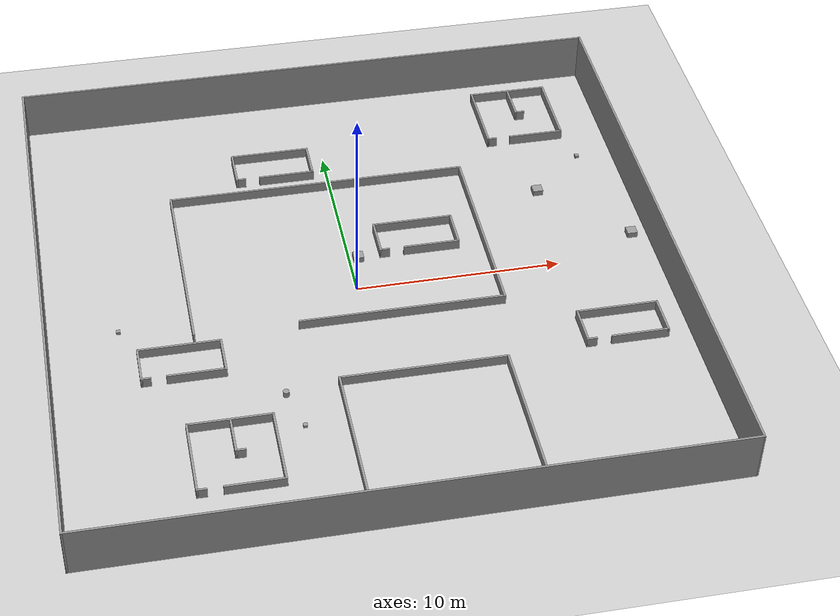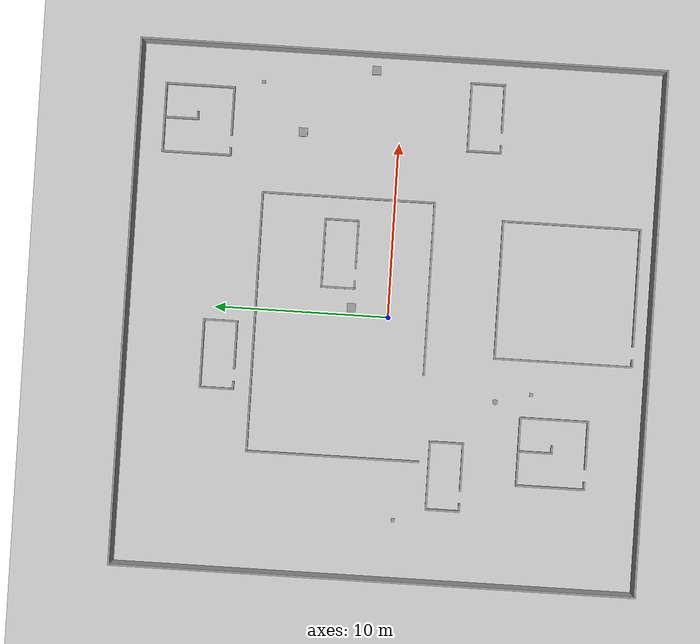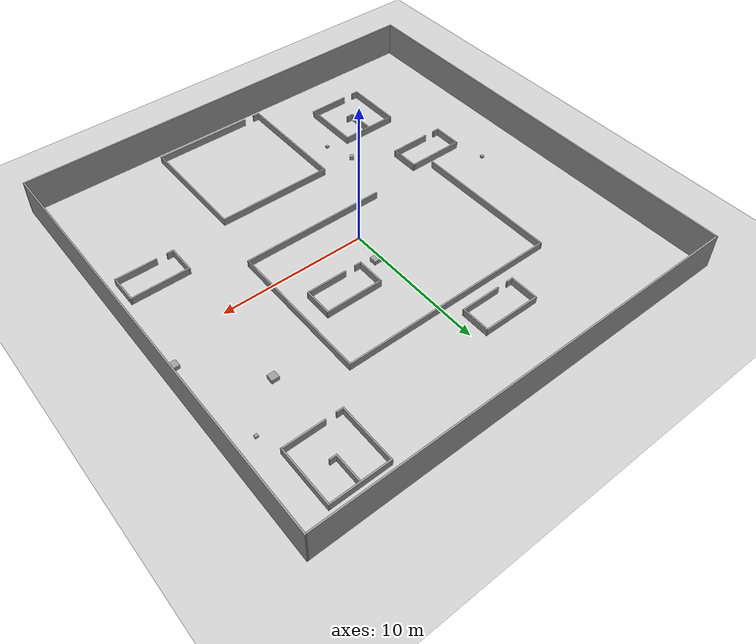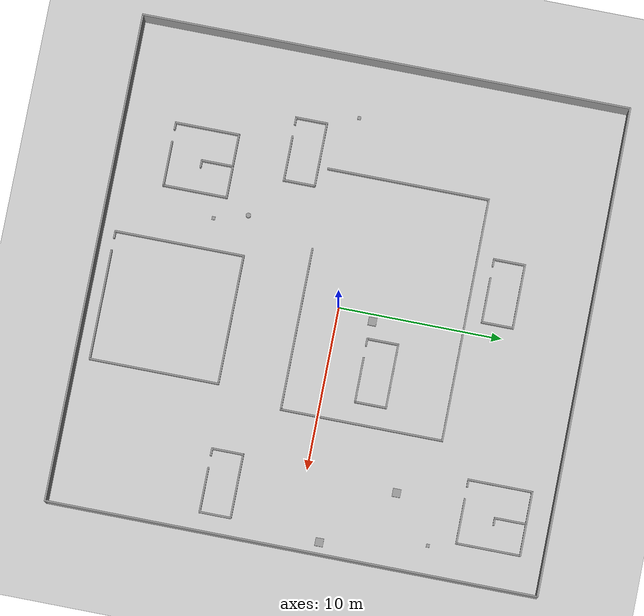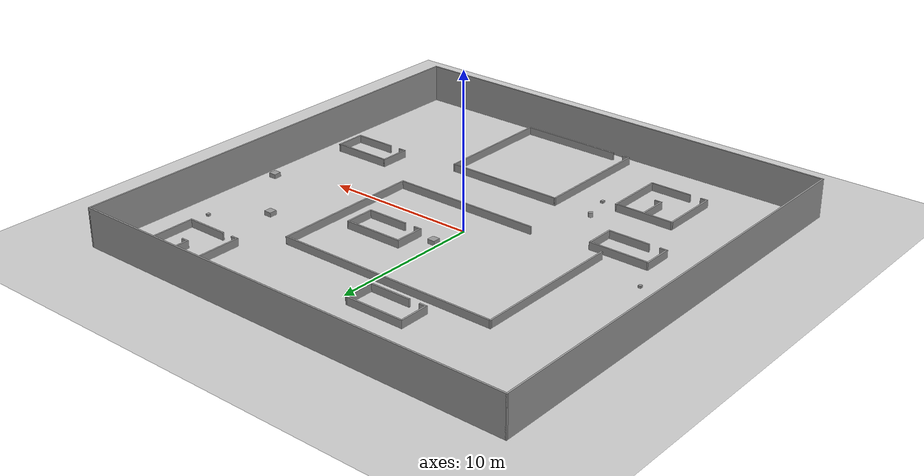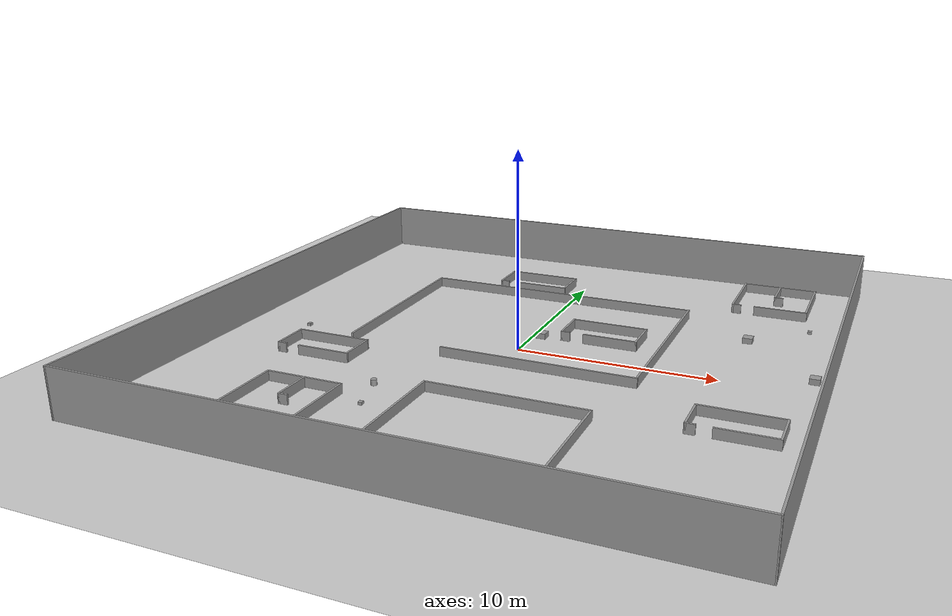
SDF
<sdf version="1.6">
  <world name="default">
    <light name="sun" type="directional">
      <cast_shadows>1</cast_shadows>
      <pose frame="">0 0 10 0 -0 0</pose>
      <diffuse>0.8 0.8 0.8 1</diffuse>
      <specular>0.2 0.2 0.2 1</specular>
      <attenuation>
        <range>1000</range>
        <constant>0.9</constant>
        <linear>0.01</linear>
        <quadratic>0.001</quadratic>
      </attenuation>
      <direction>-0.5 0.1 -0.9</direction>
    </light>
    <model name="ground_plane">
      <static>1</static>
      <link name="link">
        <collision name="collision">
          <geometry>
            <plane>
              <normal>0 0 1</normal>
              <size>30 30</size>
            </plane>
          </geometry>
          <surface>
            <contact>
              <collide_bitmask>65535</collide_bitmask>
              <ode />
            </contact>
            <friction>
              <ode>
                <mu>100</mu>
                <mu2>50</mu2>
              </ode>
              <torsional>
                <ode />
              </torsional>
            </friction>
            <bounce />
          </surface>
          <max_contacts>15</max_contacts>
        </collision>
        <visual name="visual">
          <cast_shadows>0</cast_shadows>
          <geometry>
            <plane>
              <normal>0 0 1</normal>
              <size>30 30</size>
            </plane>
          </geometry>
          <material>
            <script>
              <uri>file://media/materials/scripts/gazebo.material</uri>
              <name>Gazebo/Grey</name>
            </script>
          </material>
        </visual>
        <self_collide>0</self_collide>
        <enable_wind>0</enable_wind>
        <kinematic>0</kinematic>
      </link>
    </model>
     <model name="outsidewall.sdf">
    <pose frame="">0 0 0 0 -0 0</pose>
    <link name="Wall_3">
      <collision name="Wall_3_Collision">
        <geometry>
          <box>
            <size>30 0.10 2.5</size>
          </box>
        </geometry>
        <pose frame="">0 0 1.25 0 -0 0</pose>
      </collision>
      <visual name="Wall_3_Visual">
        <pose frame="">0 0 1.25 0 -0 0</pose>
        <geometry>
          <box>
            <size>30 0.10 2.5</size>
          </box>
        </geometry>
        <material>
          <script>
            <uri>file://media/materials/scripts/gazebo.material</uri>
            <name>Gazebo/Grey</name>
          </script>
          <ambient>1 1 1 1</ambient>
        </material>
        <meta>
          <layer>0</layer>
        </meta>
      </visual>
      <pose frame="">0 14.95 0 0 -0 0</pose>
    </link>
    <link name="Wall_5">
      <collision name="Wall_5_Collision">
        <geometry>
          <box>
            <size>30 0.10 2.5</size>
          </box>
        </geometry>
        <pose frame="">0 0 1.25 0 -0 0</pose>
      </collision>
      <visual name="Wall_5_Visual">
        <pose frame="">0 0 1.25 0 -0 0</pose>
        <geometry>
          <box>
            <size>30 0.10 2.5</size>
          </box>
        </geometry>
        <material>
          <script>
            <uri>file://media/materials/scripts/gazebo.material</uri>
            <name>Gazebo/Grey</name>
          </script>
          <ambient>1 1 1 1</ambient>
        </material>
        <meta>
          <layer>0</layer>
        </meta>
      </visual>
      <pose frame="">-14.95 0 0 0 -0 1.5707</pose>
    </link>
    <link name="Wall_6">
      <collision name="Wall_6_Collision">
        <geometry>
          <box>
            <size>30 0.10 2.5</size>
          </box>
        </geometry>
        <pose frame="">0 0 1.25 0 -0 0</pose>
      </collision>
      <visual name="Wall_6_Visual">
        <pose frame="">0 0 1.25 0 -0 0</pose>
        <geometry>
          <box>
            <size>30 0.10 2.5</size>
          </box>
        </geometry>
        <material>
          <script>
            <uri>file://media/materials/scripts/gazebo.material</uri>
            <name>Gazebo/Grey</name>
          </script>
          <ambient>1 1 1 1</ambient>
        </material>
        <meta>
          <layer>0</layer>
        </meta>
      </visual>
      <pose frame="">0 -14.95 0 0 -0 0</pose>
    </link>
    <link name="Wall_7">
      <collision name="Wall_7_Collision">
        <geometry>
          <box>
            <size>30 0.10 2.5</size>
          </box>
        </geometry>
        <pose frame="">0 0 1.25 0 -0 0</pose>
      </collision>
      <visual name="Wall_7_Visual">
        <pose frame="">0 0 1.25 0 -0 0</pose>
        <geometry>
          <box>
            <size>30 0.10 2.5</size>
          </box>
        </geometry>
        <material>
          <script>
            <uri>file://media/materials/scripts/gazebo.material</uri>
            <name>Gazebo/Grey</name>
          </script>
          <ambient>1 1 1 1</ambient>
        </material>
        <meta>
          <layer>0</layer>
        </meta>
      </visual>
      <pose frame="">14.95 0 0 0 -0 1.5707</pose>
    </link>
    <static>1</static>
  </model>
    <gravity>0 0 -9.8</gravity>
    <magnetic_field>6e-06 2.3e-05 -4.2e-05</magnetic_field>
    <atmosphere type="adiabatic" />
    <physics default="0" name="default_physics" type="ode">
      <max_step_size>0.001</max_step_size>
      <real_time_factor>1</real_time_factor>
      <real_time_update_rate>1000</real_time_update_rate>
    </physics>
    <scene>
      <ambient>0.4 0.4 0.4 1</ambient>
      <background>0.7 0.7 0.7 1</background>
      <shadows>1</shadows>
    </scene>
    <audio>
      <device>default</device>
    </audio>
    <wind />
    <spherical_coordinates>
      <surface_model>EARTH_WGS84</surface_model>
      <latitude_deg>0</latitude_deg>
      <longitude_deg>0</longitude_deg>
      <elevation>0</elevation>
      <heading_deg>0</heading_deg>
    </spherical_coordinates>
    <gui fullscreen="0">
      <camera name="user_camera">
        <pose frame="">17.6964 -3.39131 8.77294 0 0.343643 2.9522</pose>
        <view_controller>orbit</view_controller>
        <projection_type>perspective</projection_type>
      </camera>
    </gui>

  <model name="shape3">
    <pose frame="">-0.7 2.7 0 0 -0 0</pose>
    <link name="Wall_10">
      <collision name="Wall_10_Collision">
        <geometry>
          <box>
            <size>10 0.1 0.5</size>
          </box>
        </geometry>
        <pose frame="">0 0 0.25 0 -0 0</pose>
      </collision>
      <visual name="Wall_10_Visual">
        <pose frame="">0 0 0.25 0 -0 0</pose>
        <geometry>
          <box>
            <size>10 0.1 0.5</size>
          </box>
        </geometry>
        <material>
          <script>
            <uri>file://media/materials/scripts/gazebo.material</uri>
            <name>Gazebo/Grey</name>
          </script>
          <ambient>1 1 1 1</ambient>
        </material>
        <meta>
          <layer>0</layer>
        </meta>
      </visual>
      <pose frame="">2.5 -4.95 0 0 -0 3.14159</pose>
    </link>
    <link name="Wall_12">
      <collision name="Wall_12_Collision">
        <geometry>
          <box>
            <size>10 0.1 0.5</size>
          </box>
        </geometry>
        <pose frame="">0 0 0.25 0 -0 0</pose>
      </collision>
      <visual name="Wall_12_Visual">
        <pose frame="">0 0 0.25 0 -0 0</pose>
        <geometry>
          <box>
            <size>10 0.1 0.5</size>
          </box>
        </geometry>
        <material>
          <script>
            <uri>file://media/materials/scripts/gazebo.material</uri>
            <name>Gazebo/Grey</name>
          </script>
          <ambient>1 1 1 1</ambient>
        </material>
        <meta>
          <layer>0</layer>
        </meta>
      </visual>
      <pose frame="">-7.45 -0 0 0 -0 -1.5708</pose>
    </link>
    <link name="Wall_8">
      <collision name="Wall_8_Collision">
        <geometry>
          <box>
            <size>15 0.1 0.5</size>
          </box>
        </geometry>
        <pose frame="">0 0 0.25 0 -0 0</pose>
      </collision>
      <visual name="Wall_8_Visual">
        <pose frame="">0 0 0.25 0 -0 0</pose>
        <geometry>
          <box>
            <size>15 0.1 0.5</size>
          </box>
        </geometry>
        <material>
          <script>
            <uri>file://media/materials/scripts/gazebo.material</uri>
            <name>Gazebo/Grey</name>
          </script>
          <ambient>1 1 1 1</ambient>
        </material>
        <meta>
          <layer>0</layer>
        </meta>
      </visual>
      <pose frame="">-0 4.95 0 0 -0 0</pose>
    </link>
    <link name="Wall_9">
      <collision name="Wall_9_Collision">
        <geometry>
          <box>
            <size>10 0.1 0.5</size>
          </box>
        </geometry>
        <pose frame="">0 0 0.25 0 -0 0</pose>
      </collision>
      <visual name="Wall_9_Visual">
        <pose frame="">0 0 0.25 0 -0 0</pose>
        <geometry>
          <box>
            <size>10 0.1 0.5</size>
          </box>
        </geometry>
        <material>
          <script>
            <uri>file://media/materials/scripts/gazebo.material</uri>
            <name>Gazebo/Grey</name>
          </script>
          <ambient>1 1 1 1</ambient>
        </material>
        <meta>
          <layer>0</layer>
        </meta>
      </visual>
      <pose frame="">7.45 -0 0 0 -0 -1.5708</pose>
    </link>
    <static>1</static>
  </model>
<model name="shape4">
    <pose frame="">-7.2 -9.9 0 0 -0 0</pose>
    <link name="Wall_0">
      <collision name="Wall_0_Collision">
        <geometry>
          <box>
            <size>4 0.1 0.5</size>
          </box>
        </geometry>
        <pose frame="">0 0 0.25 0 -0 0</pose>
      </collision>
      <visual name="Wall_0_Visual">
        <pose frame="">0 0 0.25 0 -0 0</pose>
        <geometry>
          <box>
            <size>4 0.1 0.5</size>
          </box>
        </geometry>
        <material>
          <script>
            <uri>file://media/materials/scripts/gazebo.material</uri>
            <name>Gazebo/Grey</name>
          </script>
          <ambient>1 1 1 1</ambient>
        </material>
        <meta>
          <layer>0</layer>
        </meta>
      </visual>
      <pose frame="">-1.95 0 0 0 -0 -1.5708</pose>
    </link>
    <link name="Wall_1">
      <collision name="Wall_1_Collision">
        <geometry>
          <box>
            <size>0.5 0.1 0.5</size>
          </box>
        </geometry>
        <pose frame="">0 0 0.25 0 -0 0</pose>
      </collision>
      <visual name="Wall_1_Visual">
        <pose frame="">0 0 0.25 0 -0 0</pose>
        <geometry>
          <box>
            <size>0.5 0.1 0.5</size>
          </box>
        </geometry>
        <material>
          <script>
            <uri>file://media/materials/scripts/gazebo.material</uri>
            <name>Gazebo/Grey</name>
          </script>
          <ambient>1 1 1 1</ambient>
        </material>
        <meta>
          <layer>0</layer>
        </meta>
      </visual>
      <pose frame="">-1.75 -1.95 0 0 -0 0</pose>
    </link>
    <link name="Wall_3">
      <collision name="Wall_3_Collision">
        <geometry>
          <box>
            <size>4 0.1 0.5</size>
          </box>
        </geometry>
        <pose frame="">0 0 0.25 0 -0 0</pose>
      </collision>
      <visual name="Wall_3_Visual">
        <pose frame="">0 0 0.25 0 -0 0</pose>
        <geometry>
          <box>
            <size>4 0.1 0.5</size>
          </box>
        </geometry>
        <material>
          <script>
            <uri>file://media/materials/scripts/gazebo.material</uri>
            <name>Gazebo/Grey</name>
          </script>
          <ambient>1 1 1 1</ambient>
        </material>
        <meta>
          <layer>0</layer>
        </meta>
      </visual>
      <pose frame="">0 1.95 0 0 -0 0</pose>
    </link>
    <link name="Wall_4">
      <collision name="Wall_4_Collision">
        <geometry>
          <box>
            <size>4 0.1 0.5</size>
          </box>
        </geometry>
        <pose frame="">0 0 0.25 0 -0 0</pose>
      </collision>
      <visual name="Wall_4_Visual">
        <pose frame="">0 0 0.25 0 -0 0</pose>
        <geometry>
          <box>
            <size>4 0.1 0.5</size>
          </box>
        </geometry>
        <material>
          <script>
            <uri>file://media/materials/scripts/gazebo.material</uri>
            <name>Gazebo/Grey</name>
          </script>
          <ambient>1 1 1 1</ambient>
        </material>
        <meta>
          <layer>0</layer>
        </meta>
      </visual>
      <pose frame="">1.95 0 0 0 -0 -1.5708</pose>
    </link>
    <link name="Wall_5">
      <collision name="Wall_5_Collision">
        <geometry>
          <box>
            <size>2.8 0.1 0.5</size>
          </box>
        </geometry>
        <pose frame="">0 0 0.25 0 -0 0</pose>
      </collision>
      <visual name="Wall_5_Visual">
        <pose frame="">0 0 0.25 0 -0 0</pose>
        <geometry>
          <box>
            <size>2.8 0.1 0.5</size>
          </box>
        </geometry>
        <material>
          <script>
            <uri>file://media/materials/scripts/gazebo.material</uri>
            <name>Gazebo/Grey</name>
          </script>
          <ambient>1 1 1 1</ambient>
        </material>
        <meta>
          <layer>0</layer>
        </meta>
      </visual>
      <pose frame="">0.6 -1.95 0 0 -0 3.14159</pose>
    </link>
    <link name="Wall_7">
      <collision name="Wall_7_Collision">
        <geometry>
          <box>
            <size>2 0.1 0.5</size>
          </box>
        </geometry>
        <pose frame="">0 0 0.25 0 -0 0</pose>
      </collision>
      <visual name="Wall_7_Visual">
        <pose frame="">0 0 0.25 0 -0 0</pose>
        <geometry>
          <box>
            <size>2 0.1 0.5</size>
          </box>
        </geometry>
        <material>
          <script>
            <uri>file://media/materials/scripts/gazebo.material</uri>
            <name>Gazebo/Grey</name>
          </script>
          <ambient>1 1 1 1</ambient>
        </material>
        <meta>
          <layer>0</layer>
        </meta>
      </visual>
      <pose frame="">0.015 0.991 0 0 -0 -1.5708</pose>
    </link>
    <link name="Wall_8">
      <collision name="Wall_8_Collision">
        <geometry>
          <box>
            <size>0.5 0.1 0.5</size>
          </box>
        </geometry>
        <pose frame="">0 0 0.25 0 -0 0</pose>
      </collision>
      <visual name="Wall_8_Visual">
        <pose frame="">0 0 0.25 0 -0 0</pose>
        <geometry>
          <box>
            <size>0.5 0.1 0.5</size>
          </box>
        </geometry>
        <material>
          <script>
            <uri>file://media/materials/scripts/gazebo.material</uri>
            <name>Gazebo/Grey</name>
          </script>
          <ambient>1 1 1 1</ambient>
        </material>
        <meta>
          <layer>0</layer>
        </meta>
      </visual>
      <pose frame="">0.215 0.041 0 0 -0 0</pose>
    </link>
    <static>1</static>
  </model>
<model name="shape2">
    <pose frame="">-8.9 -3.8 0 0 -0 0</pose>
    <link name="Wall_0">
      <collision name="Wall_0_Collision">
        <geometry>
          <box>
            <size>3.98685 0.1 0.5</size>
          </box>
        </geometry>
        <pose frame="">0 0 0.25 0 -0 0</pose>
      </collision>
      <visual name="Wall_0_Visual">
        <pose frame="">0 0 0.25 0 -0 0</pose>
        <geometry>
          <box>
            <size>3.98685 0.1 0.5</size>
          </box>
        </geometry>
        <material>
          <script>
            <uri>file://media/materials/scripts/gazebo.material</uri>
            <name>Gazebo/Grey</name>
          </script>
          <ambient>1 1 1 1</ambient>
        </material>
        <meta>
          <layer>0</layer>
        </meta>
      </visual>
      <pose frame="">0.003288 0.95 0 0 -0 0</pose>
    </link>
    <link name="Wall_1">
      <collision name="Wall_1_Collision">
        <geometry>
          <box>
            <size>2 0.1 0.5</size>
          </box>
        </geometry>
        <pose frame="">0 0 0.25 0 -0 0</pose>
      </collision>
      <visual name="Wall_1_Visual">
        <pose frame="">0 0 0.25 0 -0 0</pose>
        <geometry>
          <box>
            <size>2 0.1 0.5</size>
          </box>
        </geometry>
        <material>
          <script>
            <uri>file://media/materials/scripts/gazebo.material</uri>
            <name>Gazebo/Grey</name>
          </script>
          <ambient>1 1 1 1</ambient>
        </material>
        <meta>
          <layer>0</layer>
        </meta>
      </visual>
      <pose frame="">1.94671 0 0 0 -0 -1.5708</pose>
    </link>
    <link name="Wall_2">
      <collision name="Wall_2_Collision">
        <geometry>
          <box>
            <size>2.8 0.1 0.5</size>
          </box>
        </geometry>
        <pose frame="">0 0 0.25 0 -0 0</pose>
      </collision>
      <visual name="Wall_2_Visual">
        <pose frame="">0 0 0.25 0 -0 0</pose>
        <geometry>
          <box>
            <size>2.8 0.1 0.5</size>
          </box>
        </geometry>
        <material>
          <script>
            <uri>file://media/materials/scripts/gazebo.material</uri>
            <name>Gazebo/Grey</name>
          </script>
          <ambient>1 1 1 1</ambient>
        </material>
        <meta>
          <layer>0</layer>
        </meta>
      </visual>
      <pose frame="">0.596712 -0.95 0 0 -0 3.14159</pose>
    </link>
    <link name="Wall_4">
      <collision name="Wall_4_Collision">
        <geometry>
          <box>
            <size>2 0.1 0.5</size>
          </box>
        </geometry>
        <pose frame="">0 0 0.25 0 -0 0</pose>
      </collision>
      <visual name="Wall_4_Visual">
        <pose frame="">0 0 0.25 0 -0 0</pose>
        <geometry>
          <box>
            <size>2 0.1 0.5</size>
          </box>
        </geometry>
        <material>
          <script>
            <uri>file://media/materials/scripts/gazebo.material</uri>
            <name>Gazebo/Grey</name>
          </script>
          <ambient>1 1 1 1</ambient>
        </material>
        <meta>
          <layer>0</layer>
        </meta>
      </visual>
      <pose frame="">-1.94671 0 0 0 -0 -1.5708</pose>
    </link>
    <link name="Wall_5">
      <collision name="Wall_5_Collision">
        <geometry>
          <box>
            <size>0.5 0.1 0.5</size>
          </box>
        </geometry>
        <pose frame="">0 0 0.25 0 -0 0</pose>
      </collision>
      <visual name="Wall_5_Visual">
        <pose frame="">0 0 0.25 0 -0 0</pose>
        <geometry>
          <box>
            <size>0.5 0.1 0.5</size>
          </box>
        </geometry>
        <material>
          <script>
            <uri>file://media/materials/scripts/gazebo.material</uri>
            <name>Gazebo/Grey</name>
          </script>
          <ambient>1 1 1 1</ambient>
        </material>
        <meta>
          <layer>0</layer>
        </meta>
      </visual>
      <pose frame="">-1.74671 -0.95 0 0 -0 0</pose>
    </link>
    <static>1</static>
  </model>
<model name="shape8">
    <pose frame="">2 -10.2 0 0 -0 0</pose>
    <link name="Wall_41">
      <collision name="Wall_41_Collision">
        <geometry>
          <box>
            <size>8 0.1 0.5</size>
          </box>
        </geometry>
        <pose frame="">0 0 0.25 0 -0 0</pose>
      </collision>
      <visual name="Wall_41_Visual">
        <pose frame="">0 0 0.25 0 -0 0</pose>
        <geometry>
          <box>
            <size>8 0.1 0.5</size>
          </box>
        </geometry>
        <material>
          <script>
            <uri>file://media/materials/scripts/gazebo.material</uri>
            <name>Gazebo/Grey</name>
          </script>
          <ambient>1 1 1 1</ambient>
        </material>
        <meta>
          <layer>0</layer>
        </meta>
      </visual>
      <pose frame="">0 3.95 0 0 -0 0</pose>
    </link>
    <link name="Wall_42">
      <collision name="Wall_42_Collision">
        <geometry>
          <box>
            <size>8 0.1 0.5</size>
          </box>
        </geometry>
        <pose frame="">0 0 0.25 0 -0 0</pose>
      </collision>
      <visual name="Wall_42_Visual">
        <pose frame="">0 0 0.25 0 -0 0</pose>
        <geometry>
          <box>
            <size>8 0.1 0.5</size>
          </box>
        </geometry>
        <material>
          <script>
            <uri>file://media/materials/scripts/gazebo.material</uri>
            <name>Gazebo/Grey</name>
          </script>
          <ambient>1 1 1 1</ambient>
        </material>
        <meta>
          <layer>0</layer>
        </meta>
      </visual>
      <pose frame="">3.95 -0 0 0 -0 -1.5708</pose>
    </link>
    <link name="Wall_43">
      <collision name="Wall_43_Collision">
        <geometry>
          <box>
            <size>6.8 0.1 0.5</size>
          </box>
        </geometry>
        <pose frame="">0 0 0.25 0 -0 0</pose>
      </collision>
      <visual name="Wall_43_Visual">
        <pose frame="">0 0 0.25 0 -0 0</pose>
        <geometry>
          <box>
            <size>6.8 0.1 0.5</size>
          </box>
        </geometry>
        <material>
          <script>
            <uri>file://media/materials/scripts/gazebo.material</uri>
            <name>Gazebo/Grey</name>
          </script>
          <ambient>1 1 1 1</ambient>
        </material>
        <meta>
          <layer>0</layer>
        </meta>
      </visual>
      <pose frame="">0.6 -3.95 0 0 -0 3.14159</pose>
    </link>
    <link name="Wall_45">
      <collision name="Wall_45_Collision">
        <geometry>
          <box>
            <size>8 0.1 0.5</size>
          </box>
        </geometry>
        <pose frame="">0 0 0.25 0 -0 0</pose>
      </collision>
      <visual name="Wall_45_Visual">
        <pose frame="">0 0 0.25 0 -0 0</pose>
        <geometry>
          <box>
            <size>8 0.1 0.5</size>
          </box>
        </geometry>
        <material>
          <script>
            <uri>file://media/materials/scripts/gazebo.material</uri>
            <name>Gazebo/Grey</name>
          </script>
          <ambient>1 1 1 1</ambient>
        </material>
        <meta>
          <layer>0</layer>
        </meta>
      </visual>
      <pose frame="">-3.95 -0 0 0 -0 -1.5708</pose>
    </link>
    <link name="Wall_46">
      <collision name="Wall_46_Collision">
        <geometry>
          <box>
            <size>0.5 0.1 0.5</size>
          </box>
        </geometry>
        <pose frame="">0 0 0.25 0 -0 0</pose>
      </collision>
      <visual name="Wall_46_Visual">
        <pose frame="">0 0 0.25 0 -0 0</pose>
        <geometry>
          <box>
            <size>0.5 0.1 0.5</size>
          </box>
        </geometry>
        <material>
          <script>
            <uri>file://media/materials/scripts/gazebo.material</uri>
            <name>Gazebo/Grey</name>
          </script>
          <ambient>1 1 1 1</ambient>
        </material>
        <meta>
          <layer>0</layer>
        </meta>
      </visual>
      <pose frame="">-3.75 -3.95 0 0 -0 0</pose>
    </link>
    <static>1</static>
  </model>
<model name="shape4">
    <pose frame="">10.7 11.6 0 0 -0 0</pose>
    <link name="Wall_0">
      <collision name="Wall_0_Collision">
        <geometry>
          <box>
            <size>4 0.1 0.5</size>
          </box>
        </geometry>
        <pose frame="">0 0 0.25 0 -0 0</pose>
      </collision>
      <visual name="Wall_0_Visual">
        <pose frame="">0 0 0.25 0 -0 0</pose>
        <geometry>
          <box>
            <size>4 0.1 0.5</size>
          </box>
        </geometry>
        <material>
          <script>
            <uri>file://media/materials/scripts/gazebo.material</uri>
            <name>Gazebo/Grey</name>
          </script>
          <ambient>1 1 1 1</ambient>
        </material>
        <meta>
          <layer>0</layer>
        </meta>
      </visual>
      <pose frame="">-1.95 0 0 0 -0 -1.5708</pose>
    </link>
    <link name="Wall_1">
      <collision name="Wall_1_Collision">
        <geometry>
          <box>
            <size>0.5 0.1 0.5</size>
          </box>
        </geometry>
        <pose frame="">0 0 0.25 0 -0 0</pose>
      </collision>
      <visual name="Wall_1_Visual">
        <pose frame="">0 0 0.25 0 -0 0</pose>
        <geometry>
          <box>
            <size>0.5 0.1 0.5</size>
          </box>
        </geometry>
        <material>
          <script>
            <uri>file://media/materials/scripts/gazebo.material</uri>
            <name>Gazebo/Grey</name>
          </script>
          <ambient>1 1 1 1</ambient>
        </material>
        <meta>
          <layer>0</layer>
        </meta>
      </visual>
      <pose frame="">-1.75 -1.95 0 0 -0 0</pose>
    </link>
    <link name="Wall_3">
      <collision name="Wall_3_Collision">
        <geometry>
          <box>
            <size>4 0.1 0.5</size>
          </box>
        </geometry>
        <pose frame="">0 0 0.25 0 -0 0</pose>
      </collision>
      <visual name="Wall_3_Visual">
        <pose frame="">0 0 0.25 0 -0 0</pose>
        <geometry>
          <box>
            <size>4 0.1 0.5</size>
          </box>
        </geometry>
        <material>
          <script>
            <uri>file://media/materials/scripts/gazebo.material</uri>
            <name>Gazebo/Grey</name>
          </script>
          <ambient>1 1 1 1</ambient>
        </material>
        <meta>
          <layer>0</layer>
        </meta>
      </visual>
      <pose frame="">0 1.95 0 0 -0 0</pose>
    </link>
    <link name="Wall_4">
      <collision name="Wall_4_Collision">
        <geometry>
          <box>
            <size>4 0.1 0.5</size>
          </box>
        </geometry>
        <pose frame="">0 0 0.25 0 -0 0</pose>
      </collision>
      <visual name="Wall_4_Visual">
        <pose frame="">0 0 0.25 0 -0 0</pose>
        <geometry>
          <box>
            <size>4 0.1 0.5</size>
          </box>
        </geometry>
        <material>
          <script>
            <uri>file://media/materials/scripts/gazebo.material</uri>
            <name>Gazebo/Grey</name>
          </script>
          <ambient>1 1 1 1</ambient>
        </material>
        <meta>
          <layer>0</layer>
        </meta>
      </visual>
      <pose frame="">1.95 0 0 0 -0 -1.5708</pose>
    </link>
    <link name="Wall_5">
      <collision name="Wall_5_Collision">
        <geometry>
          <box>
            <size>2.8 0.1 0.5</size>
          </box>
        </geometry>
        <pose frame="">0 0 0.25 0 -0 0</pose>
      </collision>
      <visual name="Wall_5_Visual">
        <pose frame="">0 0 0.25 0 -0 0</pose>
        <geometry>
          <box>
            <size>2.8 0.1 0.5</size>
          </box>
        </geometry>
        <material>
          <script>
            <uri>file://media/materials/scripts/gazebo.material</uri>
            <name>Gazebo/Grey</name>
          </script>
          <ambient>1 1 1 1</ambient>
        </material>
        <meta>
          <layer>0</layer>
        </meta>
      </visual>
      <pose frame="">0.6 -1.95 0 0 -0 3.14159</pose>
    </link>
    <link name="Wall_7">
      <collision name="Wall_7_Collision">
        <geometry>
          <box>
            <size>2 0.1 0.5</size>
          </box>
        </geometry>
        <pose frame="">0 0 0.25 0 -0 0</pose>
      </collision>
      <visual name="Wall_7_Visual">
        <pose frame="">0 0 0.25 0 -0 0</pose>
        <geometry>
          <box>
            <size>2 0.1 0.5</size>
          </box>
        </geometry>
        <material>
          <script>
            <uri>file://media/materials/scripts/gazebo.material</uri>
            <name>Gazebo/Grey</name>
          </script>
          <ambient>1 1 1 1</ambient>
        </material>
        <meta>
          <layer>0</layer>
        </meta>
      </visual>
      <pose frame="">0.015 0.991 0 0 -0 -1.5708</pose>
    </link>
    <link name="Wall_8">
      <collision name="Wall_8_Collision">
        <geometry>
          <box>
            <size>0.5 0.1 0.5</size>
          </box>
        </geometry>
        <pose frame="">0 0 0.25 0 -0 0</pose>
      </collision>
      <visual name="Wall_8_Visual">
        <pose frame="">0 0 0.25 0 -0 0</pose>
        <geometry>
          <box>
            <size>0.5 0.1 0.5</size>
          </box>
        </geometry>
        <material>
          <script>
            <uri>file://media/materials/scripts/gazebo.material</uri>
            <name>Gazebo/Grey</name>
          </script>
          <ambient>1 1 1 1</ambient>
        </material>
        <meta>
          <layer>0</layer>
        </meta>
      </visual>
      <pose frame="">0.215 0.041 0 0 -0 0</pose>
    </link>
    <static>1</static>
  </model>
<model name="shape2">
    <pose frame="">11.8 -4.9 0 0 -0 0</pose>
    <link name="Wall_0">
      <collision name="Wall_0_Collision">
        <geometry>
          <box>
            <size>3.98685 0.1 0.5</size>
          </box>
        </geometry>
        <pose frame="">0 0 0.25 0 -0 0</pose>
      </collision>
      <visual name="Wall_0_Visual">
        <pose frame="">0 0 0.25 0 -0 0</pose>
        <geometry>
          <box>
            <size>3.98685 0.1 0.5</size>
          </box>
        </geometry>
        <material>
          <script>
            <uri>file://media/materials/scripts/gazebo.material</uri>
            <name>Gazebo/Grey</name>
          </script>
          <ambient>1 1 1 1</ambient>
        </material>
        <meta>
          <layer>0</layer>
        </meta>
      </visual>
      <pose frame="">0.003288 0.95 0 0 -0 0</pose>
    </link>
    <link name="Wall_1">
      <collision name="Wall_1_Collision">
        <geometry>
          <box>
            <size>2 0.1 0.5</size>
          </box>
        </geometry>
        <pose frame="">0 0 0.25 0 -0 0</pose>
      </collision>
      <visual name="Wall_1_Visual">
        <pose frame="">0 0 0.25 0 -0 0</pose>
        <geometry>
          <box>
            <size>2 0.1 0.5</size>
          </box>
        </geometry>
        <material>
          <script>
            <uri>file://media/materials/scripts/gazebo.material</uri>
            <name>Gazebo/Grey</name>
          </script>
          <ambient>1 1 1 1</ambient>
        </material>
        <meta>
          <layer>0</layer>
        </meta>
      </visual>
      <pose frame="">1.94671 0 0 0 -0 -1.5708</pose>
    </link>
    <link name="Wall_2">
      <collision name="Wall_2_Collision">
        <geometry>
          <box>
            <size>2.8 0.1 0.5</size>
          </box>
        </geometry>
        <pose frame="">0 0 0.25 0 -0 0</pose>
      </collision>
      <visual name="Wall_2_Visual">
        <pose frame="">0 0 0.25 0 -0 0</pose>
        <geometry>
          <box>
            <size>2.8 0.1 0.5</size>
          </box>
        </geometry>
        <material>
          <script>
            <uri>file://media/materials/scripts/gazebo.material</uri>
            <name>Gazebo/Grey</name>
          </script>
          <ambient>1 1 1 1</ambient>
        </material>
        <meta>
          <layer>0</layer>
        </meta>
      </visual>
      <pose frame="">0.596712 -0.95 0 0 -0 3.14159</pose>
    </link>
    <link name="Wall_4">
      <collision name="Wall_4_Collision">
        <geometry>
          <box>
            <size>2 0.1 0.5</size>
          </box>
        </geometry>
        <pose frame="">0 0 0.25 0 -0 0</pose>
      </collision>
      <visual name="Wall_4_Visual">
        <pose frame="">0 0 0.25 0 -0 0</pose>
        <geometry>
          <box>
            <size>2 0.1 0.5</size>
          </box>
        </geometry>
        <material>
          <script>
            <uri>file://media/materials/scripts/gazebo.material</uri>
            <name>Gazebo/Grey</name>
          </script>
          <ambient>1 1 1 1</ambient>
        </material>
        <meta>
          <layer>0</layer>
        </meta>
      </visual>
      <pose frame="">-1.94671 0 0 0 -0 -1.5708</pose>
    </link>
    <link name="Wall_5">
      <collision name="Wall_5_Collision">
        <geometry>
          <box>
            <size>0.5 0.1 0.5</size>
          </box>
        </geometry>
        <pose frame="">0 0 0.25 0 -0 0</pose>
      </collision>
      <visual name="Wall_5_Visual">
        <pose frame="">0 0 0.25 0 -0 0</pose>
        <geometry>
          <box>
            <size>0.5 0.1 0.5</size>
          </box>
        </geometry>
        <material>
          <script>
            <uri>file://media/materials/scripts/gazebo.material</uri>
            <name>Gazebo/Grey</name>
          </script>
          <ambient>1 1 1 1</ambient>
        </material>
        <meta>
          <layer>0</layer>
        </meta>
      </visual>
      <pose frame="">-1.74671 -0.95 0 0 -0 0</pose>
    </link>
    <static>1</static>
  </model>
<model name="shape2">
    <pose frame="">-2.7 9.6 0 0 -0 0</pose>
    <link name="Wall_0">
      <collision name="Wall_0_Collision">
        <geometry>
          <box>
            <size>3.98685 0.1 0.5</size>
          </box>
        </geometry>
        <pose frame="">0 0 0.25 0 -0 0</pose>
      </collision>
      <visual name="Wall_0_Visual">
        <pose frame="">0 0 0.25 0 -0 0</pose>
        <geometry>
          <box>
            <size>3.98685 0.1 0.5</size>
          </box>
        </geometry>
        <material>
          <script>
            <uri>file://media/materials/scripts/gazebo.material</uri>
            <name>Gazebo/Grey</name>
          </script>
          <ambient>1 1 1 1</ambient>
        </material>
        <meta>
          <layer>0</layer>
        </meta>
      </visual>
      <pose frame="">0.003288 0.95 0 0 -0 0</pose>
    </link>
    <link name="Wall_1">
      <collision name="Wall_1_Collision">
        <geometry>
          <box>
            <size>2 0.1 0.5</size>
          </box>
        </geometry>
        <pose frame="">0 0 0.25 0 -0 0</pose>
      </collision>
      <visual name="Wall_1_Visual">
        <pose frame="">0 0 0.25 0 -0 0</pose>
        <geometry>
          <box>
            <size>2 0.1 0.5</size>
          </box>
        </geometry>
        <material>
          <script>
            <uri>file://media/materials/scripts/gazebo.material</uri>
            <name>Gazebo/Grey</name>
          </script>
          <ambient>1 1 1 1</ambient>
        </material>
        <meta>
          <layer>0</layer>
        </meta>
      </visual>
      <pose frame="">1.94671 0 0 0 -0 -1.5708</pose>
    </link>
    <link name="Wall_2">
      <collision name="Wall_2_Collision">
        <geometry>
          <box>
            <size>2.8 0.1 0.5</size>
          </box>
        </geometry>
        <pose frame="">0 0 0.25 0 -0 0</pose>
      </collision>
      <visual name="Wall_2_Visual">
        <pose frame="">0 0 0.25 0 -0 0</pose>
        <geometry>
          <box>
            <size>2.8 0.1 0.5</size>
          </box>
        </geometry>
        <material>
          <script>
            <uri>file://media/materials/scripts/gazebo.material</uri>
            <name>Gazebo/Grey</name>
          </script>
          <ambient>1 1 1 1</ambient>
        </material>
        <meta>
          <layer>0</layer>
        </meta>
      </visual>
      <pose frame="">0.596712 -0.95 0 0 -0 3.14159</pose>
    </link>
    <link name="Wall_4">
      <collision name="Wall_4_Collision">
        <geometry>
          <box>
            <size>2 0.1 0.5</size>
          </box>
        </geometry>
        <pose frame="">0 0 0.25 0 -0 0</pose>
      </collision>
      <visual name="Wall_4_Visual">
        <pose frame="">0 0 0.25 0 -0 0</pose>
        <geometry>
          <box>
            <size>2 0.1 0.5</size>
          </box>
        </geometry>
        <material>
          <script>
            <uri>file://media/materials/scripts/gazebo.material</uri>
            <name>Gazebo/Grey</name>
          </script>
          <ambient>1 1 1 1</ambient>
        </material>
        <meta>
          <layer>0</layer>
        </meta>
      </visual>
      <pose frame="">-1.94671 0 0 0 -0 -1.5708</pose>
    </link>
    <link name="Wall_5">
      <collision name="Wall_5_Collision">
        <geometry>
          <box>
            <size>0.5 0.1 0.5</size>
          </box>
        </geometry>
        <pose frame="">0 0 0.25 0 -0 0</pose>
      </collision>
      <visual name="Wall_5_Visual">
        <pose frame="">0 0 0.25 0 -0 0</pose>
        <geometry>
          <box>
            <size>0.5 0.1 0.5</size>
          </box>
        </geometry>
        <material>
          <script>
            <uri>file://media/materials/scripts/gazebo.material</uri>
            <name>Gazebo/Grey</name>
          </script>
          <ambient>1 1 1 1</ambient>
        </material>
        <meta>
          <layer>0</layer>
        </meta>
      </visual>
      <pose frame="">-1.74671 -0.95 0 0 -0 0</pose>
    </link>
    <static>1</static>
  </model>
<model name="shape2">
    <pose frame="">3.5 3 0 0 -0 0</pose>
    <link name="Wall_0">
      <collision name="Wall_0_Collision">
        <geometry>
          <box>
            <size>3.98685 0.1 0.5</size>
          </box>
        </geometry>
        <pose frame="">0 0 0.25 0 -0 0</pose>
      </collision>
      <visual name="Wall_0_Visual">
        <pose frame="">0 0 0.25 0 -0 0</pose>
        <geometry>
          <box>
            <size>3.98685 0.1 0.5</size>
          </box>
        </geometry>
        <material>
          <script>
            <uri>file://media/materials/scripts/gazebo.material</uri>
            <name>Gazebo/Grey</name>
          </script>
          <ambient>1 1 1 1</ambient>
        </material>
        <meta>
          <layer>0</layer>
        </meta>
      </visual>
      <pose frame="">0.003288 0.95 0 0 -0 0</pose>
    </link>
    <link name="Wall_1">
      <collision name="Wall_1_Collision">
        <geometry>
          <box>
            <size>2 0.1 0.5</size>
          </box>
        </geometry>
        <pose frame="">0 0 0.25 0 -0 0</pose>
      </collision>
      <visual name="Wall_1_Visual">
        <pose frame="">0 0 0.25 0 -0 0</pose>
        <geometry>
          <box>
            <size>2 0.1 0.5</size>
          </box>
        </geometry>
        <material>
          <script>
            <uri>file://media/materials/scripts/gazebo.material</uri>
            <name>Gazebo/Grey</name>
          </script>
          <ambient>1 1 1 1</ambient>
        </material>
        <meta>
          <layer>0</layer>
        </meta>
      </visual>
      <pose frame="">1.94671 0 0 0 -0 -1.5708</pose>
    </link>
    <link name="Wall_2">
      <collision name="Wall_2_Collision">
        <geometry>
          <box>
            <size>2.8 0.1 0.5</size>
          </box>
        </geometry>
        <pose frame="">0 0 0.25 0 -0 0</pose>
      </collision>
      <visual name="Wall_2_Visual">
        <pose frame="">0 0 0.25 0 -0 0</pose>
        <geometry>
          <box>
            <size>2.8 0.1 0.5</size>
          </box>
        </geometry>
        <material>
          <script>
            <uri>file://media/materials/scripts/gazebo.material</uri>
            <name>Gazebo/Grey</name>
          </script>
          <ambient>1 1 1 1</ambient>
        </material>
        <meta>
          <layer>0</layer>
        </meta>
      </visual>
      <pose frame="">0.596712 -0.95 0 0 -0 3.14159</pose>
    </link>
    <link name="Wall_4">
      <collision name="Wall_4_Collision">
        <geometry>
          <box>
            <size>2 0.1 0.5</size>
          </box>
        </geometry>
        <pose frame="">0 0 0.25 0 -0 0</pose>
      </collision>
      <visual name="Wall_4_Visual">
        <pose frame="">0 0 0.25 0 -0 0</pose>
        <geometry>
          <box>
            <size>2 0.1 0.5</size>
          </box>
        </geometry>
        <material>
          <script>
            <uri>file://media/materials/scripts/gazebo.material</uri>
            <name>Gazebo/Grey</name>
          </script>
          <ambient>1 1 1 1</ambient>
        </material>
        <meta>
          <layer>0</layer>
        </meta>
      </visual>
      <pose frame="">-1.94671 0 0 0 -0 -1.5708</pose>
    </link>
    <link name="Wall_5">
      <collision name="Wall_5_Collision">
        <geometry>
          <box>
            <size>0.5 0.1 0.5</size>
          </box>
        </geometry>
        <pose frame="">0 0 0.25 0 -0 0</pose>
      </collision>
      <visual name="Wall_5_Visual">
        <pose frame="">0 0 0.25 0 -0 0</pose>
        <geometry>
          <box>
            <size>0.5 0.1 0.5</size>
          </box>
        </geometry>
        <material>
          <script>
            <uri>file://media/materials/scripts/gazebo.material</uri>
            <name>Gazebo/Grey</name>
          </script>
          <ambient>1 1 1 1</ambient>
        </material>
        <meta>
          <layer>0</layer>
        </meta>
      </visual>
      <pose frame="">-1.74671 -0.95 0 0 -0 0</pose>
    </link>
    <static>1</static>
  </model>
<model name="box_d=50">
    <link name="link_2">
      <inertial>
        <mass>1</mass>
        <inertia>
          <ixx>0.166667</ixx>
          <ixy>0</ixy>
          <ixz>0</ixz>
          <iyy>0.166667</iyy>
          <iyz>0</iyz>
          <izz>0.166667</izz>
        </inertia>
        <pose frame="">0 0 0 0 -0 0</pose>
      </inertial>
      <pose frame="">10.35 5.55 0 0 -0 0</pose>
      <gravity>1</gravity>
      <self_collide>0</self_collide>
      <kinematic>0</kinematic>
      <enable_wind>0</enable_wind>
      <visual name="visual">
        <pose frame="">0 0 0 0 -0 0</pose>
        <geometry>
          <box>
            <size>0.5 0.5 0.5</size>
          </box>
        </geometry>
        <material>
          <lighting>1</lighting>
          <script>
            <uri>file://media/materials/scripts/gazebo.material</uri>
            <name>Gazebo/Grey</name>
          </script>
          <shader type="vertex">
            <normal_map>__default__</normal_map>
          </shader>
          <ambient>0.3 0.3 0.3 1</ambient>
          <diffuse>0.7 0.7 0.7 1</diffuse>
          <specular>0.01 0.01 0.01 1</specular>
          <emissive>0 0 0 1</emissive>
        </material>
        <transparency>0</transparency>
        <cast_shadows>1</cast_shadows>
      </visual>
      <collision name="collision">
        <laser_retro>0</laser_retro>
        <max_contacts>10</max_contacts>
        <pose frame="">0 0 0 0 -0 0</pose>
        <geometry>
          <box>
            <size>0.5 0.5 0.5</size>
          </box>
        </geometry>
        <surface>
          <friction>
            <ode>
              <mu>1</mu>
              <mu2>1</mu2>
              <fdir1>0 0 0</fdir1>
              <slip1>0</slip1>
              <slip2>0</slip2>
            </ode>
            <torsional>
              <coefficient>1</coefficient>
              <patch_radius>0</patch_radius>
              <surface_radius>0</surface_radius>
              <use_patch_radius>1</use_patch_radius>
              <ode>
                <slip>0</slip>
              </ode>
            </torsional>
          </friction>
          <bounce>
            <restitution_coefficient>0</restitution_coefficient>
            <threshold>1e+06</threshold>
          </bounce>
          <contact>
            <collide_without_contact>0</collide_without_contact>
            <collide_without_contact_bitmask>1</collide_without_contact_bitmask>
            <collide_bitmask>1</collide_bitmask>
            <ode>
              <soft_cfm>0</soft_cfm>
              <soft_erp>0.2</soft_erp>
              <kp>1e+13</kp>
              <kd>1</kd>
              <max_vel>0.01</max_vel>
              <min_depth>0</min_depth>
            </ode>
            <bullet>
              <split_impulse>1</split_impulse>
              <split_impulse_penetration_threshold>-0.01</split_impulse_penetration_threshold>
              <soft_cfm>0</soft_cfm>
              <soft_erp>0.2</soft_erp>
              <kp>1e+13</kp>
              <kd>1</kd>
            </bullet>
          </contact>
        </surface>
      </collision>
    </link>
    <static>0</static>
    <allow_auto_disable>1</allow_auto_disable>
  </model>
<model name="box_d=20">
    <link name="link_2">
      <inertial>
        <mass>1</mass>
        <inertia>
          <ixx>0.166667</ixx>
          <ixy>0</ixy>
          <ixz>0</ixz>
          <iyy>0.166667</iyy>
          <iyz>0</iyz>
          <izz>0.166667</izz>
        </inertia>
        <pose frame="">0 0 0 0 -0 0</pose>
      </inertial>
      <pose frame="">13.1 8 0 0 -0 0</pose>
      <gravity>1</gravity>
      <self_collide>0</self_collide>
      <kinematic>0</kinematic>
      <enable_wind>0</enable_wind>
      <visual name="visual">
        <pose frame="">0 0 0 0 -0 0</pose>
        <geometry>
          <box>
            <size>0.2 0.2 0.2</size>
          </box>
        </geometry>
        <material>
          <lighting>1</lighting>
          <script>
            <uri>file://media/materials/scripts/gazebo.material</uri>
            <name>Gazebo/Grey</name>
          </script>
          <shader type="vertex">
            <normal_map>__default__</normal_map>
          </shader>
          <ambient>0.3 0.3 0.3 1</ambient>
          <diffuse>0.7 0.7 0.7 1</diffuse>
          <specular>0.01 0.01 0.01 1</specular>
          <emissive>0 0 0 1</emissive>
        </material>
        <transparency>0</transparency>
        <cast_shadows>1</cast_shadows>
      </visual>
      <collision name="collision">
        <laser_retro>0</laser_retro>
        <max_contacts>10</max_contacts>
        <pose frame="">0 0 0 0 -0 0</pose>
        <geometry>
          <box>
            <size>0.2 0.2 0.2</size>
          </box>
        </geometry>
        <surface>
          <friction>
            <ode>
              <mu>1</mu>
              <mu2>1</mu2>
              <fdir1>0 0 0</fdir1>
              <slip1>0</slip1>
              <slip2>0</slip2>
            </ode>
            <torsional>
              <coefficient>1</coefficient>
              <patch_radius>0</patch_radius>
              <surface_radius>0</surface_radius>
              <use_patch_radius>1</use_patch_radius>
              <ode>
                <slip>0</slip>
              </ode>
            </torsional>
          </friction>
          <bounce>
            <restitution_coefficient>0</restitution_coefficient>
            <threshold>1e+06</threshold>
          </bounce>
          <contact>
            <collide_without_contact>0</collide_without_contact>
            <collide_without_contact_bitmask>1</collide_without_contact_bitmask>
            <collide_bitmask>1</collide_bitmask>
            <ode>
              <soft_cfm>0</soft_cfm>
              <soft_erp>0.2</soft_erp>
              <kp>1e+13</kp>
              <kd>1</kd>
              <max_vel>0.01</max_vel>
              <min_depth>0</min_depth>
            </ode>
            <bullet>
              <split_impulse>1</split_impulse>
              <split_impulse_penetration_threshold>-0.01</split_impulse_penetration_threshold>
              <soft_cfm>0</soft_cfm>
              <soft_erp>0.2</soft_erp>
              <kp>1e+13</kp>
              <kd>1</kd>
            </bullet>
          </contact>
        </surface>
      </collision>
    </link>
    <static>0</static>
    <allow_auto_disable>1</allow_auto_disable>
  </model>
<model name="box_d=50">
    <link name="link_2">
      <inertial>
        <mass>1</mass>
        <inertia>
          <ixx>0.166667</ixx>
          <ixy>0</ixy>
          <ixz>0</ixz>
          <iyy>0.166667</iyy>
          <iyz>0</iyz>
          <izz>0.166667</izz>
        </inertia>
        <pose frame="">0 0 0 0 -0 0</pose>
      </inertial>
      <pose frame="">0.45 2.15 0 0 -0 0</pose>
      <gravity>1</gravity>
      <self_collide>0</self_collide>
      <kinematic>0</kinematic>
      <enable_wind>0</enable_wind>
      <visual name="visual">
        <pose frame="">0 0 0 0 -0 0</pose>
        <geometry>
          <box>
            <size>0.5 0.5 0.5</size>
          </box>
        </geometry>
        <material>
          <lighting>1</lighting>
          <script>
            <uri>file://media/materials/scripts/gazebo.material</uri>
            <name>Gazebo/Grey</name>
          </script>
          <shader type="vertex">
            <normal_map>__default__</normal_map>
          </shader>
          <ambient>0.3 0.3 0.3 1</ambient>
          <diffuse>0.7 0.7 0.7 1</diffuse>
          <specular>0.01 0.01 0.01 1</specular>
          <emissive>0 0 0 1</emissive>
        </material>
        <transparency>0</transparency>
        <cast_shadows>1</cast_shadows>
      </visual>
      <collision name="collision">
        <laser_retro>0</laser_retro>
        <max_contacts>10</max_contacts>
        <pose frame="">0 0 0 0 -0 0</pose>
        <geometry>
          <box>
            <size>0.5 0.5 0.5</size>
          </box>
        </geometry>
        <surface>
          <friction>
            <ode>
              <mu>1</mu>
              <mu2>1</mu2>
              <fdir1>0 0 0</fdir1>
              <slip1>0</slip1>
              <slip2>0</slip2>
            </ode>
            <torsional>
              <coefficient>1</coefficient>
              <patch_radius>0</patch_radius>
              <surface_radius>0</surface_radius>
              <use_patch_radius>1</use_patch_radius>
              <ode>
                <slip>0</slip>
              </ode>
            </torsional>
          </friction>
          <bounce>
            <restitution_coefficient>0</restitution_coefficient>
            <threshold>1e+06</threshold>
          </bounce>
          <contact>
            <collide_without_contact>0</collide_without_contact>
            <collide_without_contact_bitmask>1</collide_without_contact_bitmask>
            <collide_bitmask>1</collide_bitmask>
            <ode>
              <soft_cfm>0</soft_cfm>
              <soft_erp>0.2</soft_erp>
              <kp>1e+13</kp>
              <kd>1</kd>
              <max_vel>0.01</max_vel>
              <min_depth>0</min_depth>
            </ode>
            <bullet>
              <split_impulse>1</split_impulse>
              <split_impulse_penetration_threshold>-0.01</split_impulse_penetration_threshold>
              <soft_cfm>0</soft_cfm>
              <soft_erp>0.2</soft_erp>
              <kp>1e+13</kp>
              <kd>1</kd>
            </bullet>
          </contact>
        </surface>
      </collision>
    </link>
    <static>0</static>
    <allow_auto_disable>1</allow_auto_disable>
  </model>
<model name="box_d=50">
    <link name="link_2">
      <inertial>
        <mass>1</mass>
        <inertia>
          <ixx>0.166667</ixx>
          <ixy>0</ixy>
          <ixz>0</ixz>
          <iyy>0.166667</iyy>
          <iyz>0</iyz>
          <izz>0.166667</izz>
        </inertia>
        <pose frame="">0 0 0 0 -0 0</pose>
      </inertial>
      <pose frame="">14.15 1.55 0 0 -0 0</pose>
      <gravity>1</gravity>
      <self_collide>0</self_collide>
      <kinematic>0</kinematic>
      <enable_wind>0</enable_wind>
      <visual name="visual">
        <pose frame="">0 0 0 0 -0 0</pose>
        <geometry>
          <box>
            <size>0.5 0.5 0.5</size>
          </box>
        </geometry>
        <material>
          <lighting>1</lighting>
          <script>
            <uri>file://media/materials/scripts/gazebo.material</uri>
            <name>Gazebo/Grey</name>
          </script>
          <shader type="vertex">
            <normal_map>__default__</normal_map>
          </shader>
          <ambient>0.3 0.3 0.3 1</ambient>
          <diffuse>0.7 0.7 0.7 1</diffuse>
          <specular>0.01 0.01 0.01 1</specular>
          <emissive>0 0 0 1</emissive>
        </material>
        <transparency>0</transparency>
        <cast_shadows>1</cast_shadows>
      </visual>
      <collision name="collision">
        <laser_retro>0</laser_retro>
        <max_contacts>10</max_contacts>
        <pose frame="">0 0 0 0 -0 0</pose>
        <geometry>
          <box>
            <size>0.5 0.5 0.5</size>
          </box>
        </geometry>
        <surface>
          <friction>
            <ode>
              <mu>1</mu>
              <mu2>1</mu2>
              <fdir1>0 0 0</fdir1>
              <slip1>0</slip1>
              <slip2>0</slip2>
            </ode>
            <torsional>
              <coefficient>1</coefficient>
              <patch_radius>0</patch_radius>
              <surface_radius>0</surface_radius>
              <use_patch_radius>1</use_patch_radius>
              <ode>
                <slip>0</slip>
              </ode>
            </torsional>
          </friction>
          <bounce>
            <restitution_coefficient>0</restitution_coefficient>
            <threshold>1e+06</threshold>
          </bounce>
          <contact>
            <collide_without_contact>0</collide_without_contact>
            <collide_without_contact_bitmask>1</collide_without_contact_bitmask>
            <collide_bitmask>1</collide_bitmask>
            <ode>
              <soft_cfm>0</soft_cfm>
              <soft_erp>0.2</soft_erp>
              <kp>1e+13</kp>
              <kd>1</kd>
              <max_vel>0.01</max_vel>
              <min_depth>0</min_depth>
            </ode>
            <bullet>
              <split_impulse>1</split_impulse>
              <split_impulse_penetration_threshold>-0.01</split_impulse_penetration_threshold>
              <soft_cfm>0</soft_cfm>
              <soft_erp>0.2</soft_erp>
              <kp>1e+13</kp>
              <kd>1</kd>
            </bullet>
          </contact>
        </surface>
      </collision>
    </link>
    <static>0</static>
    <allow_auto_disable>1</allow_auto_disable>
  </model>
<model name="cylinder_d=30">
    <link name="link_0">
      <inertial>
        <mass>1</mass>
        <inertia>
          <ixx>0.145833</ixx>
          <ixy>0</ixy>
          <ixz>0</ixz>
          <iyy>0.145833</iyy>
          <iyz>0</iyz>
          <izz>0.125</izz>
        </inertia>
        <pose frame="">0 0 0 0 -0 0</pose>
      </inertial>
      <pose frame="">-4.45 -6.45 0 0 -0 0</pose>
      <gravity>1</gravity>
      <self_collide>0</self_collide>
      <kinematic>0</kinematic>
      <enable_wind>0</enable_wind>
      <visual name="visual">
        <pose frame="">0 0 0 0 -0 0</pose>
        <geometry>
          <cylinder>
            <radius>0.15</radius>
            <length>0.5</length>
          </cylinder>
        </geometry>
        <material>
          <lighting>1</lighting>
          <script>
            <uri>file://media/materials/scripts/gazebo.material</uri>
            <name>Gazebo/Grey</name>
          </script>
          <shader type="vertex">
            <normal_map>__default__</normal_map>
          </shader>
          <ambient>0.3 0.3 0.3 1</ambient>
          <diffuse>0.7 0.7 0.7 1</diffuse>
          <specular>0.01 0.01 0.01 1</specular>
          <emissive>0 0 0 1</emissive>
        </material>
        <transparency>0</transparency>
        <cast_shadows>1</cast_shadows>
      </visual>
      <collision name="collision">
        <laser_retro>0</laser_retro>
        <max_contacts>10</max_contacts>
        <pose frame="">0 0 0 0 -0 0</pose>
        <geometry>
          <cylinder>
            <radius>0.15</radius>
            <length>0.5</length>
          </cylinder>
        </geometry>
        <surface>
          <friction>
            <ode>
              <mu>1</mu>
              <mu2>1</mu2>
              <fdir1>0 0 0</fdir1>
              <slip1>0</slip1>
              <slip2>0</slip2>
            </ode>
            <torsional>
              <coefficient>1</coefficient>
              <patch_radius>0</patch_radius>
              <surface_radius>0</surface_radius>
              <use_patch_radius>1</use_patch_radius>
              <ode>
                <slip>0</slip>
              </ode>
            </torsional>
          </friction>
          <bounce>
            <restitution_coefficient>0</restitution_coefficient>
            <threshold>1e+06</threshold>
          </bounce>
          <contact>
            <collide_without_contact>0</collide_without_contact>
            <collide_without_contact_bitmask>1</collide_without_contact_bitmask>
            <collide_bitmask>1</collide_bitmask>
            <ode>
              <soft_cfm>0</soft_cfm>
              <soft_erp>0.2</soft_erp>
              <kp>1e+13</kp>
              <kd>1</kd>
              <max_vel>0.01</max_vel>
              <min_depth>0</min_depth>
            </ode>
            <bullet>
              <split_impulse>1</split_impulse>
              <split_impulse_penetration_threshold>-0.01</split_impulse_penetration_threshold>
              <soft_cfm>0</soft_cfm>
              <soft_erp>0.2</soft_erp>
              <kp>1e+13</kp>
              <kd>1</kd>
            </bullet>
          </contact>
        </surface>
      </collision>
    </link>
    <static>0</static>
    <allow_auto_disable>1</allow_auto_disable>
  </model>
<model name="box_d=20">
    <link name="link_2">
      <inertial>
        <mass>1</mass>
        <inertia>
          <ixx>0.166667</ixx>
          <ixy>0</ixy>
          <ixz>0</ixz>
          <iyy>0.166667</iyy>
          <iyz>0</iyz>
          <izz>0.166667</izz>
        </inertia>
        <pose frame="">0 0 0 0 -0 0</pose>
      </inertial>
      <pose frame="">-3.9 -8.5 0 0 -0 0</pose>
      <gravity>1</gravity>
      <self_collide>0</self_collide>
      <kinematic>0</kinematic>
      <enable_wind>0</enable_wind>
      <visual name="visual">
        <pose frame="">0 0 0 0 -0 0</pose>
        <geometry>
          <box>
            <size>0.2 0.2 0.2</size>
          </box>
        </geometry>
        <material>
          <lighting>1</lighting>
          <script>
            <uri>file://media/materials/scripts/gazebo.material</uri>
            <name>Gazebo/Grey</name>
          </script>
          <shader type="vertex">
            <normal_map>__default__</normal_map>
          </shader>
          <ambient>0.3 0.3 0.3 1</ambient>
          <diffuse>0.7 0.7 0.7 1</diffuse>
          <specular>0.01 0.01 0.01 1</specular>
          <emissive>0 0 0 1</emissive>
        </material>
        <transparency>0</transparency>
        <cast_shadows>1</cast_shadows>
      </visual>
      <collision name="collision">
        <laser_retro>0</laser_retro>
        <max_contacts>10</max_contacts>
        <pose frame="">0 0 0 0 -0 0</pose>
        <geometry>
          <box>
            <size>0.2 0.2 0.2</size>
          </box>
        </geometry>
        <surface>
          <friction>
            <ode>
              <mu>1</mu>
              <mu2>1</mu2>
              <fdir1>0 0 0</fdir1>
              <slip1>0</slip1>
              <slip2>0</slip2>
            </ode>
            <torsional>
              <coefficient>1</coefficient>
              <patch_radius>0</patch_radius>
              <surface_radius>0</surface_radius>
              <use_patch_radius>1</use_patch_radius>
              <ode>
                <slip>0</slip>
              </ode>
            </torsional>
          </friction>
          <bounce>
            <restitution_coefficient>0</restitution_coefficient>
            <threshold>1e+06</threshold>
          </bounce>
          <contact>
            <collide_without_contact>0</collide_without_contact>
            <collide_without_contact_bitmask>1</collide_without_contact_bitmask>
            <collide_bitmask>1</collide_bitmask>
            <ode>
              <soft_cfm>0</soft_cfm>
              <soft_erp>0.2</soft_erp>
              <kp>1e+13</kp>
              <kd>1</kd>
              <max_vel>0.01</max_vel>
              <min_depth>0</min_depth>
            </ode>
            <bullet>
              <split_impulse>1</split_impulse>
              <split_impulse_penetration_threshold>-0.01</split_impulse_penetration_threshold>
              <soft_cfm>0</soft_cfm>
              <soft_erp>0.2</soft_erp>
              <kp>1e+13</kp>
              <kd>1</kd>
            </bullet>
          </contact>
        </surface>
      </collision>
    </link>
    <static>0</static>
    <allow_auto_disable>1</allow_auto_disable>
  </model>
<model name="box_d=20">
    <link name="link_2">
      <inertial>
        <mass>1</mass>
        <inertia>
          <ixx>0.166667</ixx>
          <ixy>0</ixy>
          <ixz>0</ixz>
          <iyy>0.166667</iyy>
          <iyz>0</iyz>
          <izz>0.166667</izz>
        </inertia>
        <pose frame="">0 0 0 0 -0 0</pose>
      </inertial>
      <pose frame="">-11.6 -1 0 0 -0 0</pose>
      <gravity>1</gravity>
      <self_collide>0</self_collide>
      <kinematic>0</kinematic>
      <enable_wind>0</enable_wind>
      <visual name="visual">
        <pose frame="">0 0 0 0 -0 0</pose>
        <geometry>
          <box>
            <size>0.2 0.2 0.2</size>
          </box>
        </geometry>
        <material>
          <lighting>1</lighting>
          <script>
            <uri>file://media/materials/scripts/gazebo.material</uri>
            <name>Gazebo/Grey</name>
          </script>
          <shader type="vertex">
            <normal_map>__default__</normal_map>
          </shader>
          <ambient>0.3 0.3 0.3 1</ambient>
          <diffuse>0.7 0.7 0.7 1</diffuse>
          <specular>0.01 0.01 0.01 1</specular>
          <emissive>0 0 0 1</emissive>
        </material>
        <transparency>0</transparency>
        <cast_shadows>1</cast_shadows>
      </visual>
      <collision name="collision">
        <laser_retro>0</laser_retro>
        <max_contacts>10</max_contacts>
        <pose frame="">0 0 0 0 -0 0</pose>
        <geometry>
          <box>
            <size>0.2 0.2 0.2</size>
          </box>
        </geometry>
        <surface>
          <friction>
            <ode>
              <mu>1</mu>
              <mu2>1</mu2>
              <fdir1>0 0 0</fdir1>
              <slip1>0</slip1>
              <slip2>0</slip2>
            </ode>
            <torsional>
              <coefficient>1</coefficient>
              <patch_radius>0</patch_radius>
              <surface_radius>0</surface_radius>
              <use_patch_radius>1</use_patch_radius>
              <ode>
                <slip>0</slip>
              </ode>
            </torsional>
          </friction>
          <bounce>
            <restitution_coefficient>0</restitution_coefficient>
            <threshold>1e+06</threshold>
          </bounce>
          <contact>
            <collide_without_contact>0</collide_without_contact>
            <collide_without_contact_bitmask>1</collide_without_contact_bitmask>
            <collide_bitmask>1</collide_bitmask>
            <ode>
              <soft_cfm>0</soft_cfm>
              <soft_erp>0.2</soft_erp>
              <kp>1e+13</kp>
              <kd>1</kd>
              <max_vel>0.01</max_vel>
              <min_depth>0</min_depth>
            </ode>
            <bullet>
              <split_impulse>1</split_impulse>
              <split_impulse_penetration_threshold>-0.01</split_impulse_penetration_threshold>
              <soft_cfm>0</soft_cfm>
              <soft_erp>0.2</soft_erp>
              <kp>1e+13</kp>
              <kd>1</kd>
            </bullet>
          </contact>
        </surface>
      </collision>
    </link>
    <static>0</static>
    <allow_auto_disable>1</allow_auto_disable>
  </model>
</world>
</sdf>
